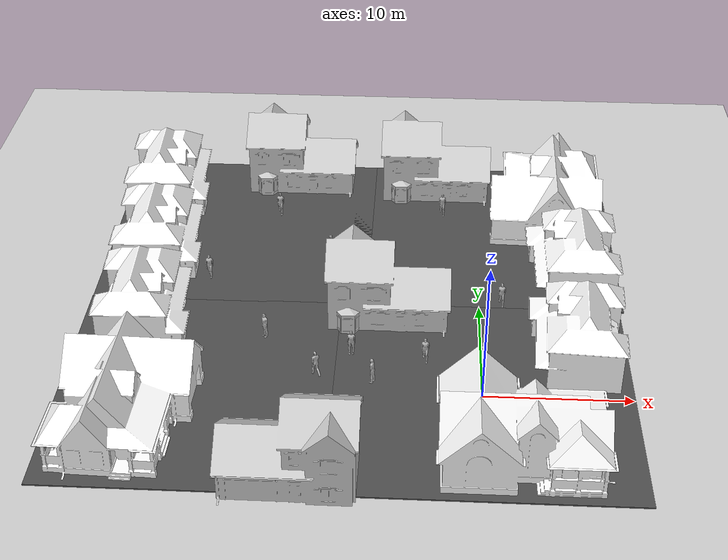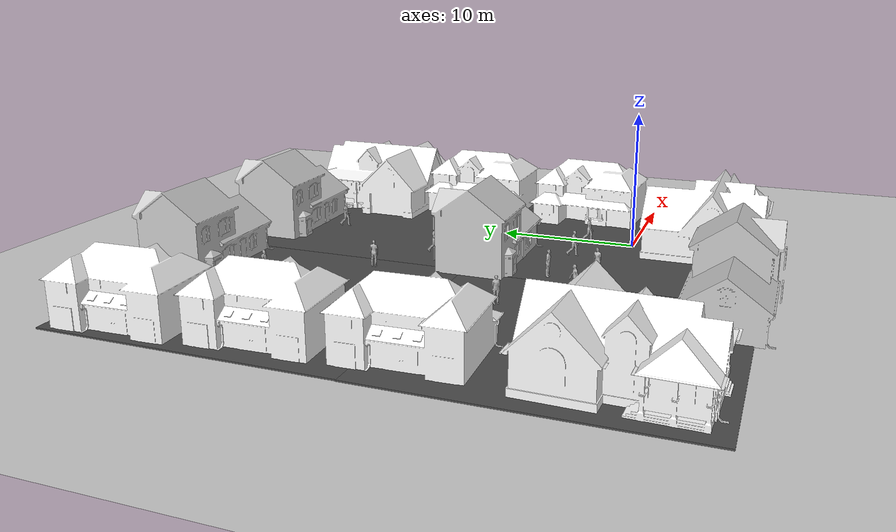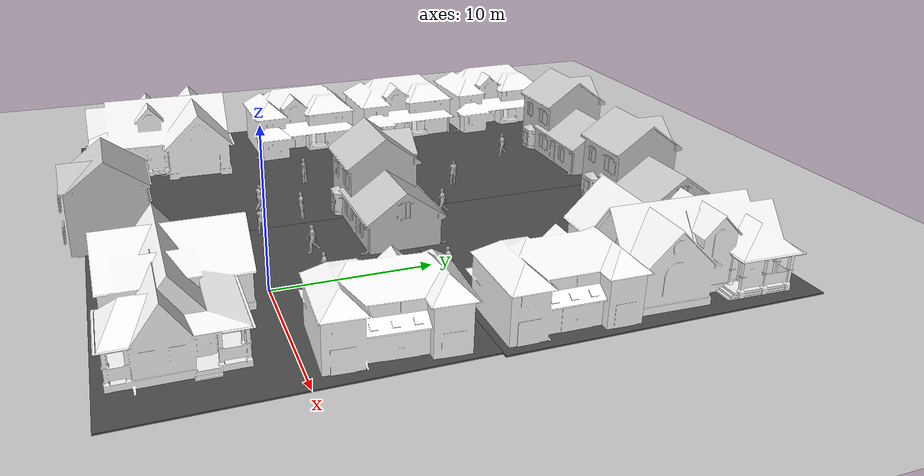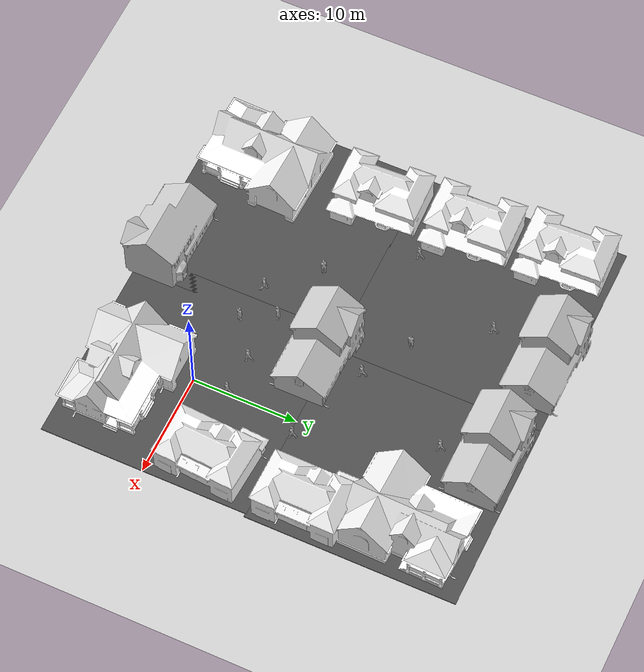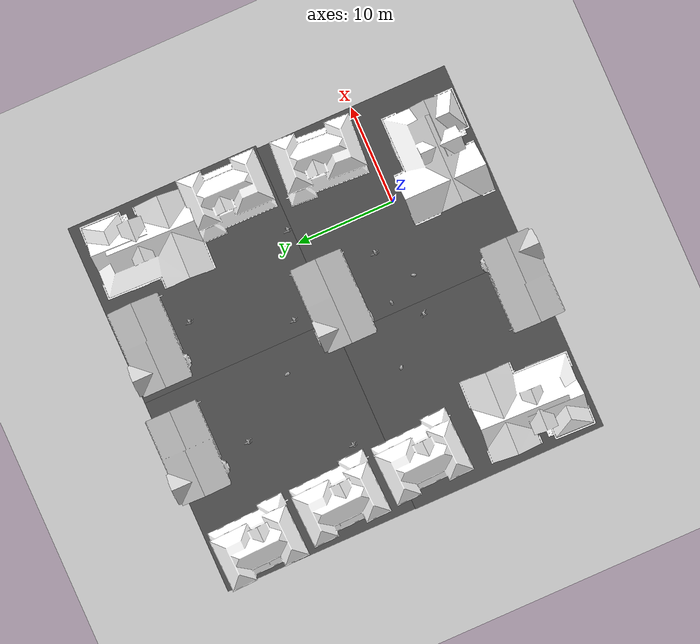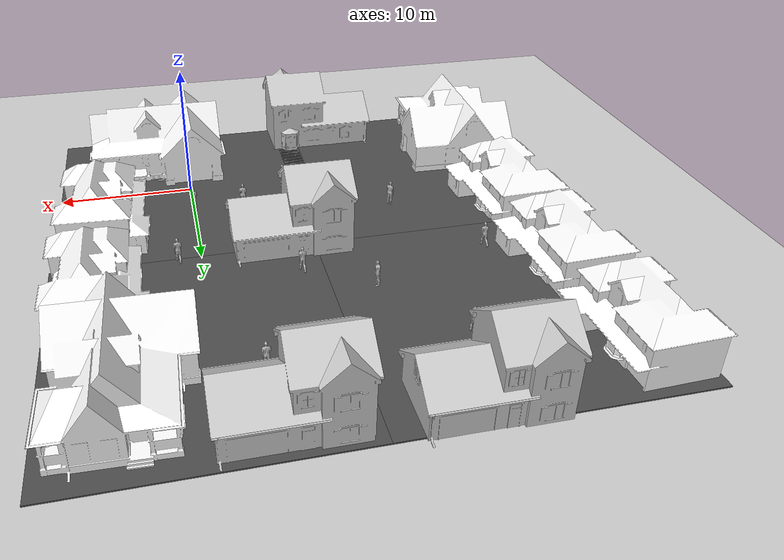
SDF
<sdf version="1.6">
 <world name="default">
  <light name="sun" type="directional">
   <pose>0 0 10 0 -0 0</pose>
   <diffuse>0.8 0.8 0.8 1</diffuse>
   <specular>0.1 0.1 0.1 1</specular>
   <attenuation>
    <range>1000</range>
    <constant>0.9</constant>
    <linear>0.01</linear>
    <quadratic>0.001</quadratic>
   </attenuation>
   <direction>-0.5 0.5 -1</direction>
  </light>
  <model name="ground_plane">
   <static>1</static>
   <link name="link">
    <collision name="collision">
     <geometry><plane><normal>0 0 1</normal><size>100 100</size></plane></geometry>
     <surface><friction><ode><mu>100</mu><mu2>50</mu2></ode></friction></surface>
    </collision>
    <visual name="visual">
     <cast_shadows>0</cast_shadows>
     <geometry><plane><normal>0 0 1</normal><size>100 100</size></plane></geometry>
     <material>
      <script><uri>file://media/materials/scripts/gazebo.material</uri><name>Gazebo/Grey</name></script>
     </material>
    </visual>
   </link>
  </model>
  <gravity>0 0 -9.8</gravity>
  <magnetic_field>6e-06 2.3e-05 -4.2e-05</magnetic_field>
  <atmosphere type="adiabatic"/>
  <physics name="default_physics" default="0" type="ode">
   <max_step_size>0.001</max_step_size>
   <real_time_factor>1</real_time_factor>
   <real_time_update_rate>1000</real_time_update_rate>
  </physics>
  <scene><ambient>0.4 0.4 0.4 1</ambient><background>0.7 0.7 0.7 1</background><shadows>1</shadows></scene>
  <spherical_coordinates>
   <surface_model>EARTH_WGS84</surface_model>
   <latitude_deg>0</latitude_deg>
   <longitude_deg>0</longitude_deg>
   <elevation>0</elevation>
   <heading_deg>0</heading_deg>
  </spherical_coordinates>
  <model name="asphalt_plane">
   <static>1</static>
   <link name="link">
    <collision name="collision"><geometry><box><size>20 20 0.1</size></box></geometry></collision>
    <visual name="visual">
     <cast_shadows>0</cast_shadows>
     <geometry><box><size>20 20 0.1</size></box></geometry>
     <material>
      <script>
       <uri>model://asphalt_plane/materials/scripts</uri>
       <uri>model://asphalt_plane/materials/textures</uri>
       <name>vrc/asphalt</name>
      </script>
     </material>
    </visual>
   </link>
   <pose>0.076034 0.051172 0 0 -0 0</pose>
  </model>
  <model name="House 1">
   <static>1</static>
   <link name="link">
    <collision name="collision">
     <geometry><mesh><uri>model://house_1/meshes/house_1.dae</uri><scale>1 1 1</scale></mesh></geometry>
    </collision>
    <visual name="visual">
     <geometry><mesh><uri>model://house_1/meshes/house_1.dae</uri><scale>1 1 1</scale></mesh></geometry>
     <material>
      <script>
       <uri>model://house_1/materials/scripts</uri>
       <uri>model://house_1/materials/textures</uri>
       <name>House_1/Diffuse</name>
      </script>
      <shader type="normal_map_object_space"><normal_map>House_1_Normal.png</normal_map></shader>
     </material>
    </visual>
   </link>
   <pose>-23.2617 -3.78152 0 0 -0 1.54081</pose>
  </model>
  <model name="asphalt_plane_0">
   <static>1</static>
   <link name="link">
    <collision name="collision"><geometry><box><size>20 20 0.1</size></box></geometry></collision>
    <visual name="visual">
     <cast_shadows>0</cast_shadows>
     <geometry><box><size>20 20 0.1</size></box></geometry>
     <material>
      <script>
       <uri>model://asphalt_plane/materials/scripts</uri>
       <uri>model://asphalt_plane/materials/textures</uri>
       <name>vrc/asphalt</name>
      </script>
     </material>
    </visual>
   </link>
   <pose>-18.1927 0.051257 0 0 -0 0</pose>
  </model>
  <model name="asphalt_plane_0_clone">
   <static>1</static>
   <link name="link">
    <collision name="collision"><geometry><box><size>20 20 0.1</size></box></geometry></collision>
    <visual name="visual">
     <cast_shadows>0</cast_shadows>
     <geometry><box><size>20 20 0.1</size></box></geometry>
     <material>
      <script>
       <uri>model://asphalt_plane/materials/scripts</uri>
       <uri>model://asphalt_plane/materials/textures</uri>
       <name>vrc/asphalt</name>
      </script>
     </material>
    </visual>
   </link>
   <pose>-18.1509 19.9531 0 0 -0 0</pose>
  </model>
  <model name="asphalt_plane_0_clone_0">
   <static>1</static>
   <link name="link">
    <collision name="collision"><geometry><box><size>20 20 0.1</size></box></geometry></collision>
    <visual name="visual">
     <cast_shadows>0</cast_shadows>
     <geometry><box><size>20 20 0.1</size></box></geometry>
     <material>
      <script>
       <uri>model://asphalt_plane/materials/scripts</uri>
       <uri>model://asphalt_plane/materials/textures</uri>
       <name>vrc/asphalt</name>
      </script>
     </material>
    </visual>
   </link>
   <pose>0.391346 19.9548 0 0 -0 0</pose>
  </model>
  <model name="House 2">
   <static>1</static>
   <link name="link">
    <collision name="collision">
     <geometry><mesh><uri>model://house_2/meshes/house_2.dae</uri><scale>1 1 1</scale></mesh></geometry>
    </collision>
    <visual name="visual">
     <geometry><mesh><uri>model://house_2/meshes/house_2.dae</uri><scale>1 1 1</scale></mesh></geometry>
     <material>
      <script>
       <uri>model://house_2/materials/scripts</uri>
       <uri>model://house_2/materials/textures</uri>
       <name>House_2/Diffuse</name>
      </script>
     </material>
    </visual>
   </link>
   <pose>-24.146 8.1635 0 0 0 -1.53653</pose>
  </model>
  <model name="House 3">
   <static>1</static>
   <link name="link">
    <collision name="collision">
     <geometry><mesh><uri>model://house_3/meshes/house_3.dae</uri><scale>1 1 1</scale></mesh></geometry>
    </collision>
    <visual name="visual">
     <geometry><mesh><uri>model://house_3/meshes/house_3.dae</uri><scale>1 1 1</scale></mesh></geometry>
     <material>
      <script>
       <uri>model://house_3/materials/scripts</uri>
       <uri>model://house_3/materials/textures</uri>
       <name>House_3/Diffuse</name>
      </script>
     </material>
    </visual>
   </link>
   <pose>-12.3493 -8.20211 0 0 -0 3.13997</pose>
  </model>
  <model name="House 3_clone">
   <static>1</static>
   <link name="link">
    <collision name="collision">
     <geometry><mesh><uri>model://house_3/meshes/house_3.dae</uri><scale>1 1 1</scale></mesh></geometry>
    </collision>
    <visual name="visual">
     <geometry><mesh><uri>model://house_3/meshes/house_3.dae</uri><scale>1 1 1</scale></mesh></geometry>
     <material>
      <script>
       <uri>model://house_3/materials/scripts</uri>
       <uri>model://house_3/materials/textures</uri>
       <name>House_3/Diffuse</name>
      </script>
     </material>
    </visual>
   </link>
   <pose>-6.19719 9.18526 0 0 -0 0</pose>
  </model>
  <model name="House 1_clone">
   <static>1</static>
   <link name="link">
    <collision name="collision">
     <geometry><mesh><uri>model://house_1/meshes/house_1.dae</uri><scale>1 1 1</scale></mesh></geometry>
    </collision>
    <visual name="visual">
     <geometry><mesh><uri>model://house_1/meshes/house_1.dae</uri><scale>1 1 1</scale></mesh></geometry>
     <material>
      <script>
       <uri>model://house_1/materials/scripts</uri>
       <uri>model://house_1/materials/textures</uri>
       <name>House_1/Diffuse</name>
      </script>
      <shader type="normal_map_object_space"><normal_map>House_1_Normal.png</normal_map></shader>
     </material>
    </visual>
   </link>
   <pose>2.12312 -5.53086 0 0 -0 3.14056</pose>
  </model>
  <model name="House 2_clone">
   <static>1</static>
   <link name="link">
    <collision name="collision">
     <geometry><mesh><uri>model://house_2/meshes/house_2.dae</uri><scale>1 1 1</scale></mesh></geometry>
    </collision>
    <visual name="visual">
     <geometry><mesh><uri>model://house_2/meshes/house_2.dae</uri><scale>1 1 1</scale></mesh></geometry>
     <material>
      <script>
       <uri>model://house_2/materials/scripts</uri>
       <uri>model://house_2/materials/textures</uri>
       <name>House_2/Diffuse</name>
      </script>
     </material>
    </visual>
   </link>
   <pose>6.88325 4.14791 0 0 -0 1.50977</pose>
  </model>
  <model name="House 1_clone_0">
   <static>1</static>
   <link name="link">
    <collision name="collision">
     <geometry><mesh><uri>model://house_1/meshes/house_1.dae</uri><scale>1 1 1</scale></mesh></geometry>
    </collision>
    <visual name="visual">
     <geometry><mesh><uri>model://house_1/meshes/house_1.dae</uri><scale>1 1 1</scale></mesh></geometry>
     <material>
      <script>
       <uri>model://house_1/materials/scripts</uri>
       <uri>model://house_1/materials/textures</uri>
       <name>House_1/Diffuse</name>
      </script>
      <shader type="normal_map_object_space"><normal_map>House_1_Normal.png</normal_map></shader>
     </material>
    </visual>
   </link>
   <pose>5.64006 23.3026 0 0 0 -1.59996</pose>
  </model>
  <model name="House 3_clone_0">
   <static>1</static>
   <link name="link">
    <collision name="collision">
     <geometry><mesh><uri>model://house_3/meshes/house_3.dae</uri><scale>1 1 1</scale></mesh></geometry>
    </collision>
    <visual name="visual">
     <geometry><mesh><uri>model://house_3/meshes/house_3.dae</uri><scale>1 1 1</scale></mesh></geometry>
     <material>
      <script>
       <uri>model://house_3/materials/scripts</uri>
       <uri>model://house_3/materials/textures</uri>
       <name>House_3/Diffuse</name>
      </script>
     </material>
    </visual>
   </link>
   <pose>-2.92385 27.0366 0 0 -0 0</pose>
  </model>
  <model name="House 2_clone_clone">
   <static>1</static>
   <link name="link">
    <collision name="collision">
     <geometry><mesh><uri>model://house_2/meshes/house_2.dae</uri><scale>1 1 1</scale></mesh></geometry>
    </collision>
    <visual name="visual">
     <geometry><mesh><uri>model://house_2/meshes/house_2.dae</uri><scale>1 1 1</scale></mesh></geometry>
     <material>
      <script>
       <uri>model://house_2/materials/scripts</uri>
       <uri>model://house_2/materials/textures</uri>
       <name>House_2/Diffuse</name>
      </script>
     </material>
    </visual>
   </link>
   <pose>7.34597 13.7256 0 0 -0 1.55851</pose>
  </model>
  <model name="House 2_clone_0">
   <static>1</static>
   <link name="link">
    <collision name="collision">
     <geometry><mesh><uri>model://house_2/meshes/house_2.dae</uri><scale>1 1 1</scale></mesh></geometry>
    </collision>
    <visual name="visual">
     <geometry><mesh><uri>model://house_2/meshes/house_2.dae</uri><scale>1 1 1</scale></mesh></geometry>
     <material>
      <script>
       <uri>model://house_2/materials/scripts</uri>
       <uri>model://house_2/materials/textures</uri>
       <name>House_2/Diffuse</name>
      </script>
     </material>
    </visual>
   </link>
   <pose>-24.6141 17.045 0 0 0 -1.53653</pose>
  </model>
  <model name="House 3_clone_0_clone">
   <static>1</static>
   <link name="link">
    <collision name="collision">
     <geometry><mesh><uri>model://house_3/meshes/house_3.dae</uri><scale>1 1 1</scale></mesh></geometry>
    </collision>
    <visual name="visual">
     <geometry><mesh><uri>model://house_3/meshes/house_3.dae</uri><scale>1 1 1</scale></mesh></geometry>
     <material>
      <script>
       <uri>model://house_3/materials/scripts</uri>
       <uri>model://house_3/materials/textures</uri>
       <name>House_3/Diffuse</name>
      </script>
     </material>
    </visual>
   </link>
   <pose>-13.8611 27.8078 0 0 -0 0</pose>
  </model>
  <model name="House 2_clone_0_clone">
   <static>1</static>
   <link name="link">
    <collision name="collision">
     <geometry><mesh><uri>model://house_2/meshes/house_2.dae</uri><scale>1 1 1</scale></mesh></geometry>
    </collision>
    <visual name="visual">
     <geometry><mesh><uri>model://house_2/meshes/house_2.dae</uri><scale>1 1 1</scale></mesh></geometry>
     <material>
      <script>
       <uri>model://house_2/materials/scripts</uri>
       <uri>model://house_2/materials/textures</uri>
       <name>House_2/Diffuse</name>
      </script>
     </material>
    </visual>
   </link>
   <pose>-25.2733 25.9193 0 0 0 -1.53653</pose>
  </model>
  <model name="person_walking">
   <link name="link">
    <inertial>
     <pose>0 0 0.95 0 -0 0</pose>
     <mass>80</mass>
     <inertia><ixx>27.82</ixx><ixy>0</ixy><ixz>0</ixz><iyy>24.88</iyy><iyz>0</iyz><izz>4.57</izz></inertia>
    </inertial>
    <collision name="bottom">
     <pose>0 0 0.01 0 -0 0</pose>
     <geometry><box><size>0.35 0.75 0.02</size></box></geometry>
    </collision>
    <collision name="person">
     <pose>0 0 -0.02 0 -0 0</pose>
     <geometry><mesh><uri>model://person_walking/meshes/walking.dae</uri><scale>1 1 1</scale></mesh></geometry>
    </collision>
    <visual name="visual">
     <pose>0 0 -0.02 0 -0 0</pose>
     <geometry><mesh><uri>model://person_walking/meshes/walking.dae</uri><scale>1 1 1</scale></mesh></geometry>
    </visual>
   </link>
   <pose>-11.1633 1.63099 0.05 1e-06 -0 -2.62585</pose>
  </model>
  <model name="person_standing">
   <link name="link">
    <inertial>
     <pose>0 -0.1 0.95 0 -0 0</pose>
     <mass>80</mass>
     <inertia><ixx>24.88</ixx><ixy>0</ixy><ixz>0</ixz><iyy>25.73</iyy><iyz>0</iyz><izz>2.48</izz></inertia>
    </inertial>
    <collision name="bottom">
     <pose>0 -0.1 0.01 0 -0 0</pose>
     <geometry><box><size>0.5 0.35 0.02</size></box></geometry>
    </collision>
    <collision name="person">
     <pose>0 0 0.02 0.04 -0 0</pose>
     <geometry><mesh><uri>model://person_standing/meshes/standing.dae</uri><scale>1 1 1</scale></mesh></geometry>
    </collision>
    <visual name="visual">
     <pose>0 0 0.02 0.04 -0 0</pose>
     <geometry><mesh><uri>model://person_standing/meshes/standing.dae</uri><scale>1 1 1</scale></mesh></geometry>
    </visual>
   </link>
   <pose>-8.9064 4.16493 0.05 -1e-06 -1e-06 0.002254</pose>
  </model>
  <model name="person_standing_clone">
   <link name="link">
    <inertial>
     <pose>0 -0.1 0.95 0 -0 0</pose>
     <mass>80</mass>
     <inertia><ixx>24.88</ixx><ixy>0</ixy><ixz>0</ixz><iyy>25.73</iyy><iyz>0</iyz><izz>2.48</izz></inertia>
    </inertial>
    <collision name="bottom">
     <pose>0 -0.1 0.01 0 -0 0</pose>
     <geometry><box><size>0.5 0.35 0.02</size></box></geometry>
    </collision>
    <collision name="person">
     <pose>0 0 0.02 0.04 -0 0</pose>
     <geometry><mesh><uri>model://person_standing/meshes/standing.dae</uri><scale>1 1 1</scale></mesh></geometry>
    </collision>
    <visual name="visual">
     <pose>0 0 0.02 0.04 -0 0</pose>
     <geometry><mesh><uri>model://person_standing/meshes/standing.dae</uri><scale>1 1 1</scale></mesh></geometry>
    </visual>
   </link>
   <pose>-7.26523 1.00955 0.05 -0 -1e-06 -1.97964</pose>
  </model>
  <model name="person_standing_clone_0">
   <link name="link">
    <inertial>
     <pose>0 -0.1 0.95 0 -0 0</pose>
     <mass>80</mass>
     <inertia><ixx>24.88</ixx><ixy>0</ixy><ixz>0</ixz><iyy>25.73</iyy><iyz>0</iyz><izz>2.48</izz></inertia>
    </inertial>
    <collision name="bottom">
     <pose>0 -0.1 0.01 0 -0 0</pose>
     <geometry><box><size>0.5 0.35 0.02</size></box></geometry>
    </collision>
    <collision name="person">
     <pose>0 0 0.02 0.04 -0 0</pose>
     <geometry><mesh><uri>model://person_standing/meshes/standing.dae</uri><scale>1 1 1</scale></mesh></geometry>
    </collision>
    <visual name="visual">
     <pose>0 0 0.02 0.04 -0 0</pose>
     <geometry><mesh><uri>model://person_standing/meshes/standing.dae</uri><scale>1 1 1</scale></mesh></geometry>
    </visual>
   </link>
   <pose>-14.974 5.80764 0.049999 -1e-06 -1e-06 -0.863805</pose>
  </model>
  <model name="person_walking_clone">
   <link name="link">
    <inertial>
     <pose>0 0 0.95 0 -0 0</pose>
     <mass>80</mass>
     <inertia><ixx>27.82</ixx><ixy>0</ixy><ixz>0</ixz><iyy>24.88</iyy><iyz>0</iyz><izz>4.57</izz></inertia>
    </inertial>
    <collision name="bottom">
     <pose>0 0 0.01 0 -0 0</pose>
     <geometry><box><size>0.35 0.75 0.02</size></box></geometry>
    </collision>
    <collision name="person">
     <pose>0 0 -0.02 0 -0 0</pose>
     <geometry><mesh><uri>model://person_walking/meshes/walking.dae</uri><scale>1 1 1</scale></mesh></geometry>
    </collision>
    <visual name="visual">
     <pose>0 0 -0.02 0 -0 0</pose>
     <geometry><mesh><uri>model://person_walking/meshes/walking.dae</uri><scale>1 1 1</scale></mesh></geometry>
    </visual>
   </link>
   <pose>-3.83069 3.60162 0.05 -1e-06 0 0.005823</pose>
  </model>
  <model name="person_walking_clone_0">
   <link name="link">
    <inertial>
     <pose>0 0 0.95 0 -0 0</pose>
     <mass>80</mass>
     <inertia><ixx>27.82</ixx><ixy>0</ixy><ixz>0</ixz><iyy>24.88</iyy><iyz>0</iyz><izz>4.57</izz></inertia>
    </inertial>
    <collision name="bottom">
     <pose>0 0 0.01 0 -0 0</pose>
     <geometry><box><size>0.35 0.75 0.02</size></box></geometry>
    </collision>
    <collision name="person">
     <pose>0 0 -0.02 0 -0 0</pose>
     <geometry><mesh><uri>model://person_walking/meshes/walking.dae</uri><scale>1 1 1</scale></mesh></geometry>
    </collision>
    <visual name="visual">
     <pose>0 0 -0.02 0 -0 0</pose>
     <geometry><mesh><uri>model://person_walking/meshes/walking.dae</uri><scale>1 1 1</scale></mesh></geometry>
    </visual>
   </link>
   <pose>-6.61038 13.4088 0.05 -1e-06 -0 0.005421</pose>
  </model>
  <model name="person_walking_clone_1">
   <link name="link">
    <inertial>
     <pose>0 0 0.95 0 -0 0</pose>
     <mass>80</mass>
     <inertia><ixx>27.82</ixx><ixy>0</ixy><ixz>0</ixz><iyy>24.88</iyy><iyz>0</iyz><izz>4.57</izz></inertia>
    </inertial>
    <collision name="bottom">
     <pose>0 0 0.01 0 -0 0</pose>
     <geometry><box><size>0.35 0.75 0.02</size></box></geometry>
    </collision>
    <collision name="person">
     <pose>0 0 -0.02 0 -0 0</pose>
     <geometry><mesh><uri>model://person_walking/meshes/walking.dae</uri><scale>1 1 1</scale></mesh></geometry>
    </collision>
    <visual name="visual">
     <pose>0 0 -0.02 0 -0 0</pose>
     <geometry><mesh><uri>model://person_walking/meshes/walking.dae</uri><scale>1 1 1</scale></mesh></geometry>
    </visual>
   </link>
   <pose>-15.5857 22.2313 0.049999 -2e-06 1e-06 0.005627</pose>
  </model>
  <model name="person_walking_clone_2">
   <link name="link">
    <inertial>
     <pose>0 0 0.95 0 -0 0</pose>
     <mass>80</mass>
     <inertia><ixx>27.82</ixx><ixy>0</ixy><ixz>0</ixz><iyy>24.88</iyy><iyz>0</iyz><izz>4.57</izz></inertia>
    </inertial>
    <collision name="bottom">
     <pose>0 0 0.01 0 -0 0</pose>
     <geometry><box><size>0.35 0.75 0.02</size></box></geometry>
    </collision>
    <collision name="person">
     <pose>0 0 -0.02 0 -0 0</pose>
     <geometry><mesh><uri>model://person_walking/meshes/walking.dae</uri><scale>1 1 1</scale></mesh></geometry>
    </collision>
    <visual name="visual">
     <pose>0 0 -0.02 0 -0 0</pose>
     <geometry><mesh><uri>model://person_walking/meshes/walking.dae</uri><scale>1 1 1</scale></mesh></geometry>
    </visual>
   </link>
   <pose>-2.67065 22.7493 0.049999 2e-06 -0 0.004678</pose>
  </model>
  <model name="person_walking_clone_3">
   <link name="link">
    <inertial>
     <pose>0 0 0.95 0 -0 0</pose>
     <mass>80</mass>
     <inertia><ixx>27.82</ixx><ixy>0</ixy><ixz>0</ixz><iyy>24.88</iyy><iyz>0</iyz><izz>4.57</izz></inertia>
    </inertial>
    <collision name="bottom">
     <pose>0 0 0.01 0 -0 0</pose>
     <geometry><box><size>0.35 0.75 0.02</size></box></geometry>
    </collision>
    <collision name="person">
     <pose>0 0 -0.02 0 -0 0</pose>
     <geometry><mesh><uri>model://person_walking/meshes/walking.dae</uri><scale>1 1 1</scale></mesh></geometry>
    </collision>
    <visual name="visual">
     <pose>0 0 -0.02 0 -0 0</pose>
     <geometry><mesh><uri>model://person_walking/meshes/walking.dae</uri><scale>1 1 1</scale></mesh></geometry>
    </visual>
   </link>
   <pose>-19.9613 13.0298 0.05 1e-06 -0 0.004212</pose>
  </model>
  <model name="person_walking_clone_4">
   <link name="link">
    <inertial>
     <pose>0 0 0.95 0 -0 0</pose>
     <mass>80</mass>
     <inertia><ixx>27.82</ixx><ixy>0</ixy><ixz>0</ixz><iyy>24.88</iyy><iyz>0</iyz><izz>4.57</izz></inertia>
    </inertial>
    <collision name="bottom">
     <pose>0 0 0.01 0 -0 0</pose>
     <geometry><box><size>0.35 0.75 0.02</size></box></geometry>
    </collision>
    <collision name="person">
     <pose>0 0 -0.02 0 -0 0</pose>
     <geometry><mesh><uri>model://person_walking/meshes/walking.dae</uri><scale>1 1 1</scale></mesh></geometry>
    </collision>
    <visual name="visual">
     <pose>0 0 -0.02 0 -0 0</pose>
     <geometry><mesh><uri>model://person_walking/meshes/walking.dae</uri><scale>1 1 1</scale></mesh></geometry>
    </visual>
   </link>
   <pose>1.60574 10.4516 0.049999 2e-06 -1e-06 0.004231</pose>
  </model>
  <model name="person_standing_clone_1">
   <link name="link">
    <inertial>
     <pose>0 -0.1 0.95 0 -0 0</pose>
     <mass>80</mass>
     <inertia><ixx>24.88</ixx><ixy>0</ixy><ixz>0</ixz><iyy>25.73</iyy><iyz>0</iyz><izz>2.48</izz></inertia>
    </inertial>
    <collision name="bottom">
     <pose>0 -0.1 0.01 0 -0 0</pose>
     <geometry><box><size>0.5 0.35 0.02</size></box></geometry>
    </collision>
    <collision name="person">
     <pose>0 0 0.02 0.04 -0 0</pose>
     <geometry><mesh><uri>model://person_standing/meshes/standing.dae</uri><scale>1 1 1</scale></mesh></geometry>
    </collision>
    <visual name="visual">
     <pose>0 0 0.02 0.04 -0 0</pose>
     <geometry><mesh><uri>model://person_standing/meshes/standing.dae</uri><scale>1 1 1</scale></mesh></geometry>
    </visual>
   </link>
   <pose>-11.2418 16.0923 0.049999 -1e-06 1e-06 1.63938</pose>
  </model>
  <model name="person_walking_clone_4_clone">
   <link name="link">
    <inertial>
     <pose>0 0 0.95 0 -0 0</pose>
     <mass>80</mass>
     <inertia><ixx>27.82</ixx><ixy>0</ixy><ixz>0</ixz><iyy>24.88</iyy><iyz>0</iyz><izz>4.57</izz></inertia>
    </inertial>
    <collision name="bottom">
     <pose>0 0 0.01 0 -0 0</pose>
     <geometry><box><size>0.35 0.75 0.02</size></box></geometry>
    </collision>
    <collision name="person">
     <pose>0 0 -0.02 0 -0 0</pose>
     <geometry><mesh><uri>model://person_walking/meshes/walking.dae</uri><scale>1 1 1</scale></mesh></geometry>
    </collision>
    <visual name="visual">
     <pose>0 0 -0.02 0 -0 0</pose>
     <geometry><mesh><uri>model://person_walking/meshes/walking.dae</uri><scale>1 1 1</scale></mesh></geometry>
    </visual>
   </link>
   <pose>-0.040337 3.36096 0.049999 2e-06 -1e-06 0.004229</pose>
  </model>
 </world>
</sdf>
